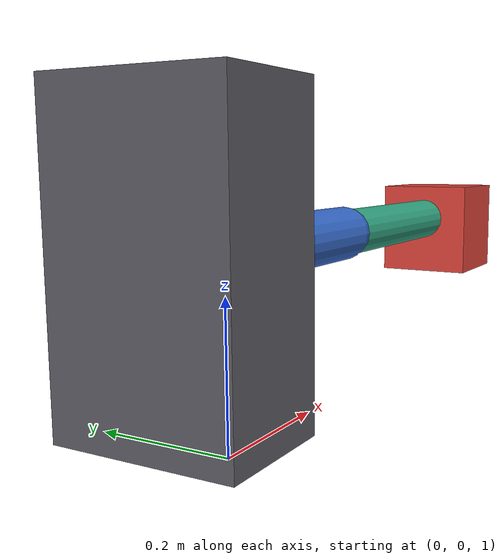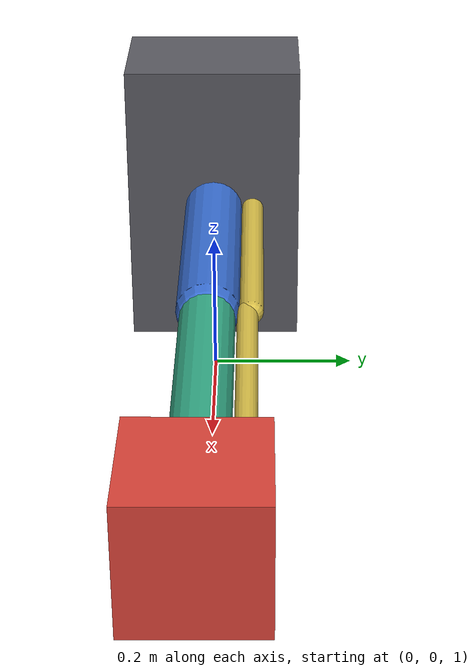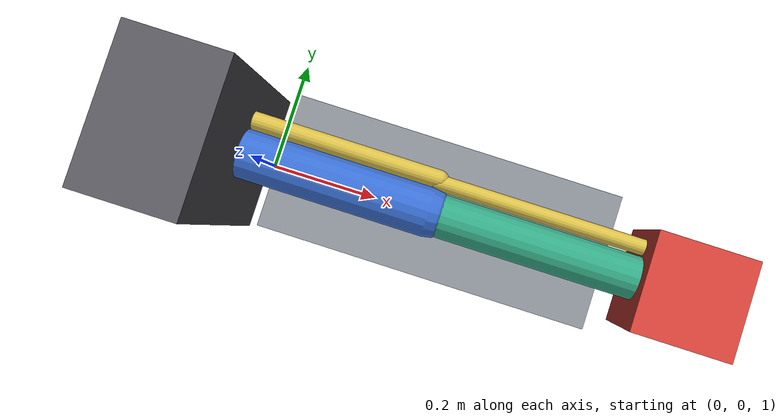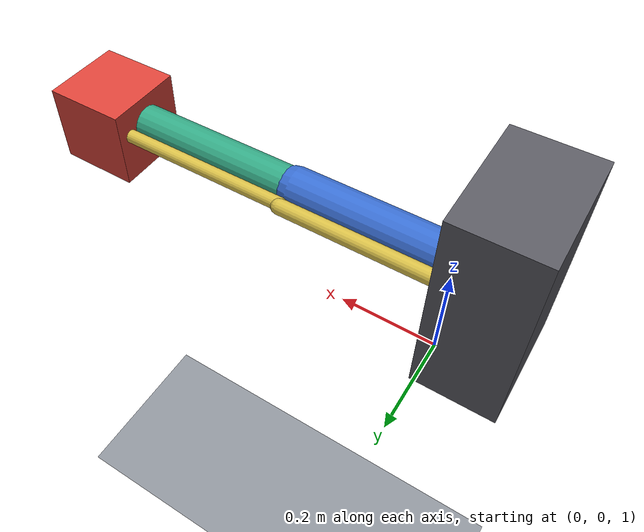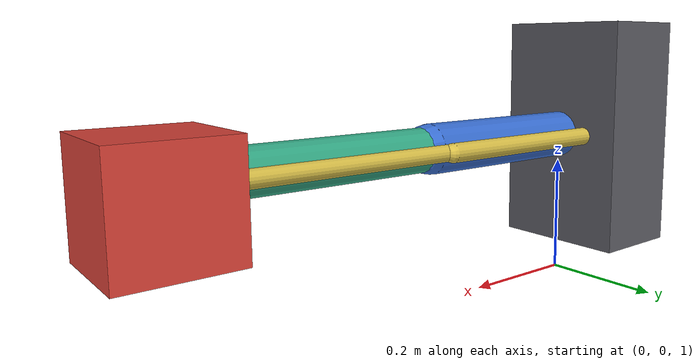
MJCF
<mujoco model="arm_exoskeleton_3d">
  <compiler angle="degree" coordinate="local" inertiafromgeom="true"/>

  <option timestep="0.005" gravity="0 0 -9.80665" integrator="RK4"/>

  <visual>
    <global offwidth="1280" offheight="720"/>
  </visual>

  <default>
    <joint damping="0.02" armature="0.01" limited="true"/>
    <geom condim="3" friction="0.8 0.02 0.001"/>
    <motor ctrllimited="true"/>
  </default>

  <asset>
    <material name="upper_arm_mat" rgba="0.22 0.43 0.82 1"/>
    <material name="forearm_mat" rgba="0.20 0.66 0.52 1"/>
    <material name="exo_mat" rgba="0.84 0.74 0.28 1"/>
    <material name="payload_mat" rgba="0.85 0.26 0.22 1"/>
    <material name="floor_mat" rgba="0.55 0.57 0.60 1"/>
  </asset>

  <worldbody>
    <light name="key_light" pos="0 -3 3" dir="0 1 -1" diffuse="0.8 0.8 0.8"/>
    <geom name="floor" type="plane" pos="0 0 0" size="2 2 0.05" material="floor_mat"/>

    <body name="torso_anchor" pos="0 0 1.25">
      <geom name="torso_stub" type="box" pos="-0.08 0 0" size="0.08 0.12 0.20" rgba="0.35 0.35 0.38 1"/>
      <site name="shoulder_site" pos="0 0 0" size="0.025" rgba="1 1 1 1"/>

      <body name="upper_arm" pos="0 0 0">
        <!-- Axis 0 -1 0 makes positive joint angles lift the arm upward. -->
        <joint name="shoulder_flexion" type="hinge" axis="0 -1 0" range="-45 130" damping="0.60"/>
        <geom name="upper_arm_geom" type="capsule" fromto="0 0 0 0.31 0 0" size="0.04" mass="2.1" material="upper_arm_mat"/>
        <geom name="upper_exo_bar" type="capsule" fromto="0 0.055 0 0.31 0.055 0" size="0.015" mass="0.35" material="exo_mat"/>

        <body name="forearm" pos="0.31 0 0">
          <joint name="elbow_flexion" type="hinge" axis="0 -1 0" range="0 150" damping="0.35"/>
          <geom name="forearm_geom" type="capsule" fromto="0 0 0 0.34 0 0" size="0.035" mass="1.65" material="forearm_mat"/>
          <geom name="forearm_exo_bar" type="capsule" fromto="0 0.05 0 0.34 0.05 0" size="0.013" mass="0.28" material="exo_mat"/>

          <body name="payload" pos="0.34 0 0">
            <site name="hand_site" pos="0 0 0" size="0.025" rgba="1 1 1 1"/>
            <geom name="payload_geom" type="box" pos="0.08 0 -0.02" size="0.08 0.08 0.08" mass="5.0" material="payload_mat"/>
          </body>
        </body>
      </body>
    </body>
  </worldbody>

  <actuator>
    <motor name="shoulder_motor" joint="shoulder_flexion" gear="1" ctrlrange="-80 80"/>
    <motor name="elbow_motor" joint="elbow_flexion" gear="1" ctrlrange="-60 60"/>
  </actuator>
</mujoco>
